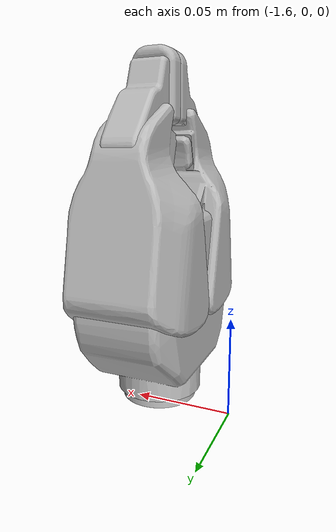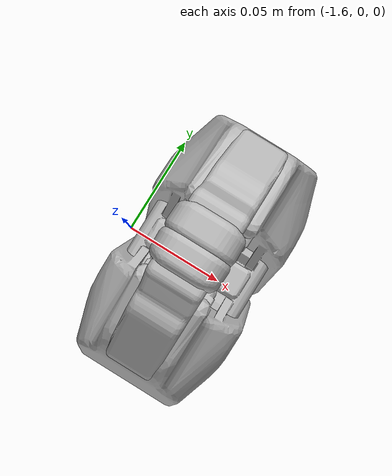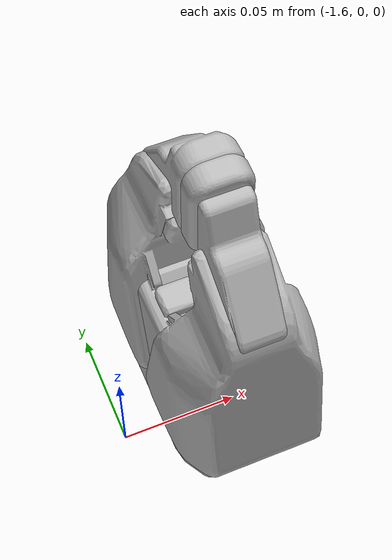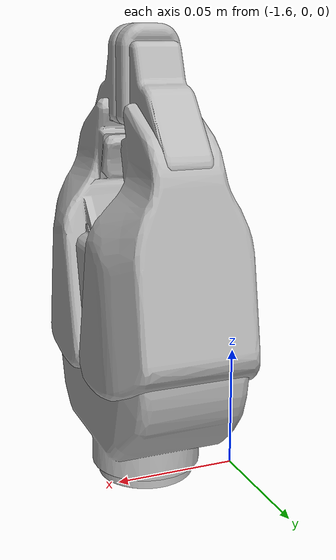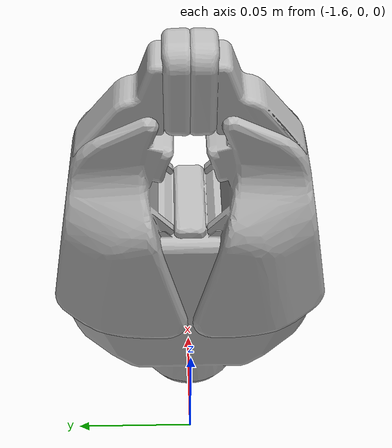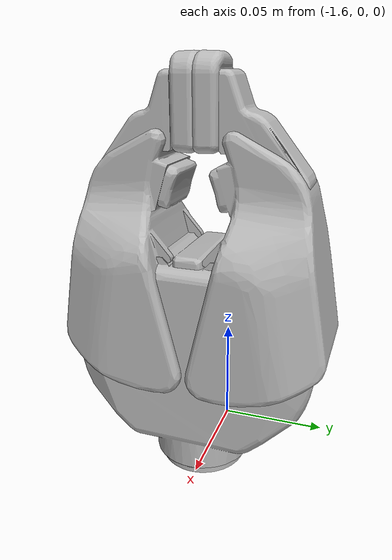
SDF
<?xml version="1.0" ?>
<sdf version='1.4'>
  <model name='pr2_gripper'>
    <pose>-0.771000 0.188000 -0.790675 3.141593 -1.570796 3.141593</pose>
    <link name='r_wrist_roll_link'>
      <pose>0.771000 -0.188000 0.790675 0.000000 -0.000000 0.000000</pose>
      <inertial>
        <pose>0.056408 0.000451 -0.001014 0.000000 -0.000000 0.000000</pose>
        <inertia>
          <ixx>0.011352</ixx>
          <ixy>-0.000016</ixy>
          <ixz>-0.000001</ixz>
          <iyy>0.011677</iyy>
          <iyz>-0.000001</iyz>
          <izz>0.011866</izz>
        </inertia>
        <mass>0.681070</mass>
      </inertial>
      <collision name='r_wrist_roll_link_geom'>
        <pose>0.000000 0.000000 0.000000 0.000000 -0.000000 0.000000</pose>
        <geometry>
          <mesh>
            <uri>model://pr2/meshes/forearm_v0/wrist_roll_L.stl</uri>
            <scale>1.000000 1.000000 1.000000</scale>
            <uri>__default__</uri>
          </mesh>
        </geometry>
        <surface>
          <friction>
            <ode>
              <mu>-1.000000</mu>
              <mu2>-1.000000</mu2>
              <fdir1>0.000000 0.000000 0.000000</fdir1>
              <slip1>0.000000</slip1>
              <slip2>0.000000</slip2>
            </ode>
          </friction>
          <bounce>
            <restitution_coefficient>0.000000</restitution_coefficient>
            <threshold>100000.000000</threshold>
          </bounce>
          <contact>
            <ode>
              <soft_cfm>0.000000</soft_cfm>
              <soft_erp>0.200000</soft_erp>
              <kp>1000000000000.000000</kp>
              <kd>1.000000</kd>
              <max_vel>0.000000</max_vel>
              <min_depth>0.001000</min_depth>
            </ode>
          </contact>
        </surface>
        <laser_retro>0.000000</laser_retro>
      </collision>
      <visual name='r_wrist_roll_link_geom_visual'>
        <pose>0.000000 0.000000 0.000000 0.000000 -0.000000 0.000000</pose>
        <geometry>
          <mesh>
            <uri>model://pr2/meshes/forearm_v0/wrist_roll.stl</uri>
            <scale>1.000000 1.000000 1.000000</scale>
            <uri>__default__</uri>
          </mesh>
        </geometry>
        <material>
          <script>
            <name>__default__</name>
          </script>
        </material>
        <cast_shadows>1</cast_shadows>
        <laser_retro>0.000000</laser_retro>
        <transparency>0.000000</transparency>
      </visual>
      <visual name='r_wrist_roll_link_geom_r_gripper_palm_link_visual'>
        <pose>0.000000 0.000000 0.000000 0.000000 -0.000000 0.000000</pose>
        <geometry>
          <mesh>
            <uri>model://pr2/meshes/gripper_v0/gripper_palm.dae</uri>
            <scale>1.000000 1.000000 1.000000</scale>
            <uri>__default__</uri>
          </mesh>
        </geometry>
        <cast_shadows>1</cast_shadows>
        <laser_retro>0.000000</laser_retro>
        <transparency>0.000000</transparency>
      </visual>
      <gravity>1</gravity>
      <self_collide>0</self_collide>
      <kinematic>0</kinematic>
      <velocity_decay/>
    </link>
    <link name='r_gripper_l_finger_link'>
      <pose>0.847910 -0.178000 0.790675 0.000000 -0.000000 0.000000</pose>
      <inertial>
        <pose>0.035980 0.017300 -0.001640 0.000000 -0.000000 0.000000</pose>
        <inertia>
          <ixx>0.000078</ixx>
          <ixy>0.000001</ixy>
          <ixz>-0.000010</ixz>
          <iyy>0.000197</iyy>
          <iyz>-0.000003</iyz>
          <izz>0.000181</izz>
        </inertia>
        <mass>0.171260</mass>
      </inertial>
      <collision name='r_gripper_l_finger_link_geom'>
        <pose>0.000000 0.000000 0.000000 0.000000 -0.000000 0.000000</pose>
        <geometry>
          <mesh>
            <uri>model://pr2/meshes/gripper_v0/l_finger.stl</uri>
            <scale>1.000000 1.000000 1.000000</scale>
            <uri>__default__</uri>
          </mesh>
        </geometry>
        <surface>
          <friction>
            <ode>
              <mu>500.000000</mu>
              <mu2>500.000000</mu2>
              <fdir1>0.000000 0.000000 0.000000</fdir1>
              <slip1>0.000000</slip1>
              <slip2>0.000000</slip2>
            </ode>
          </friction>
          <bounce>
            <restitution_coefficient>0.000000</restitution_coefficient>
            <threshold>100000.000000</threshold>
          </bounce>
          <contact>
            <ode>
              <soft_cfm>0.000000</soft_cfm>
              <soft_erp>0.200000</soft_erp>
              <kp>1000000.000000</kp>
              <kd>1.000000</kd>
              <max_vel>0.000000</max_vel>
              <min_depth>0.001000</min_depth>
            </ode>
          </contact>
        </surface>
        <laser_retro>0.000000</laser_retro>
      </collision>
      <visual name='r_gripper_l_finger_link_geom_visual'>
        <pose>0.000000 0.000000 0.000000 0.000000 -0.000000 0.000000</pose>
        <geometry>
          <mesh>
            <uri>model://pr2/meshes/gripper_v0/l_finger.dae</uri>
            <scale>1.000000 1.000000 1.000000</scale>
            <uri>__default__</uri>
          </mesh>
        </geometry>
        <cast_shadows>1</cast_shadows>
        <laser_retro>0.000000</laser_retro>
        <transparency>0.000000</transparency>
      </visual>
      <gravity>1</gravity>
      <self_collide>0</self_collide>
      <kinematic>0</kinematic>
      <velocity_decay/>
    </link>
    <link name='r_gripper_l_finger_tip_link'>
      <pose>0.939280 -0.173050 0.790675 0.000000 -0.000000 0.000000</pose>
      <inertial>
        <pose>0.004230 0.002840 0.000000 0.000000 -0.000000 0.000000</pose>
        <inertia>
          <ixx>0.000008</ixx>
          <ixy>0.000006</ixy>
          <ixz>0.000000</ixz>
          <iyy>0.000010</iyy>
          <iyz>0.000000</iyz>
          <izz>0.000015</izz>
        </inertia>
        <mass>0.044190</mass>
      </inertial>
      <collision name='r_gripper_l_finger_tip_link_geom'>
        <pose>0.000000 0.000000 0.000000 0.000000 -0.000000 0.000000</pose>
        <geometry>
          <mesh>
            <uri>model://pr2/meshes/gripper_v0/l_finger_tip.stl</uri>
            <scale>1.000000 1.000000 1.000000</scale>
            <uri>__default__</uri>
          </mesh>
        </geometry>
        <surface>
          <friction>
            <ode>
              <mu>500.000000</mu>
              <mu2>500.000000</mu2>
              <fdir1>0.000000 0.000000 0.000000</fdir1>
              <slip1>0.000000</slip1>
              <slip2>0.000000</slip2>
            </ode>
          </friction>
          <bounce>
            <restitution_coefficient>0.000000</restitution_coefficient>
            <threshold>100000.000000</threshold>
          </bounce>
          <contact>
            <ode>
              <soft_cfm>0.000000</soft_cfm>
              <soft_erp>0.200000</soft_erp>
              <kp>10000000.000000</kp>
              <kd>1.000000</kd>
              <max_vel>0.000000</max_vel>
              <min_depth>0.001000</min_depth>
            </ode>
          </contact>
        </surface>
        <laser_retro>0.000000</laser_retro>
      </collision>
      <visual name='r_gripper_l_finger_tip_link_geom_visual'>
        <pose>0.000000 0.000000 0.000000 0.000000 -0.000000 0.000000</pose>
        <geometry>
          <mesh>
            <uri>model://pr2/meshes/gripper_v0/l_finger_tip.dae</uri>
            <scale>1.000000 1.000000 1.000000</scale>
            <uri>__default__</uri>
          </mesh>
        </geometry>
        <cast_shadows>1</cast_shadows>
        <laser_retro>0.000000</laser_retro>
        <transparency>0.000000</transparency>
      </visual>
      <sensor name='r_gripper_l_finger_tip_contact_sensor' type='contact'>
        <pose>0.000000 0.000000 0.000000 0.000000 -0.000000 0.000000</pose>
        <contact>
          <collision>r_gripper_l_finger_tip_link_geom</collision>
          <topic>__default_topic__</topic>
        </contact>
        <always_on>0</always_on>
        <update_rate>100.000000</update_rate>
        <visualize>0</visualize>
      </sensor>
      <gravity>1</gravity>
      <self_collide>0</self_collide>
      <kinematic>0</kinematic>
      <velocity_decay/>
    </link>
    <link name='r_gripper_motor_slider_link'>
      <pose>0.939280 -0.188000 0.790675 0.000000 -0.000000 0.000000</pose>
      <inertial>
        <pose>0.000000 0.000000 0.000000 0.000000 -0.000000 0.000000</pose>
        <inertia>
          <ixx>0.001000</ixx>
          <ixy>0.000000</ixy>
          <ixz>0.000000</ixz>
          <iyy>0.001000</iyy>
          <iyz>0.000000</iyz>
          <izz>0.001000</izz>
        </inertia>
        <mass>0.010000</mass>
      </inertial>
      <gravity>1</gravity>
      <self_collide>0</self_collide>
      <kinematic>0</kinematic>
      <velocity_decay/>
    </link>
    <link name='r_gripper_motor_screw_link'>
      <pose>0.939280 -0.188000 0.790675 0.000000 -0.000000 0.000000</pose>
      <inertial>
        <pose>0.000000 0.000000 0.000000 0.000000 -0.000000 0.000000</pose>
        <inertia>
          <ixx>0.000100</ixx>
          <ixy>0.000000</ixy>
          <ixz>0.000000</ixz>
          <iyy>0.000100</iyy>
          <iyz>0.000000</iyz>
          <izz>0.000100</izz>
        </inertia>
        <mass>0.010000</mass>
      </inertial>
      <gravity>1</gravity>
      <self_collide>0</self_collide>
      <kinematic>0</kinematic>
      <velocity_decay/>
    </link>
    <link name='r_gripper_r_finger_link'>
      <pose>0.847910 -0.198000 0.790675 0.000000 -0.000000 0.000000</pose>
      <inertial>
        <pose>0.035760 -0.017360 -0.000950 0.000000 -0.000000 0.000000</pose>
        <inertia>
          <ixx>0.000077</ixx>
          <ixy>-0.000002</ixy>
          <ixz>-0.000008</ixz>
          <iyy>0.000198</iyy>
          <iyz>0.000002</iyz>
          <izz>0.000181</izz>
        </inertia>
        <mass>0.173890</mass>
      </inertial>
      <collision name='r_gripper_r_finger_link_geom'>
        <pose>0.000000 0.000000 0.000000 -3.141590 -0.000000 0.000000</pose>
        <geometry>
          <mesh>
            <uri>model://pr2/meshes/gripper_v0/l_finger.stl</uri>
            <scale>1.000000 1.000000 1.000000</scale>
            <uri>__default__</uri>
          </mesh>
        </geometry>
        <surface>
          <friction>
            <ode>
              <mu>500.000000</mu>
              <mu2>500.000000</mu2>
              <fdir1>0.000000 0.000000 0.000000</fdir1>
              <slip1>0.000000</slip1>
              <slip2>0.000000</slip2>
            </ode>
          </friction>
          <bounce>
            <restitution_coefficient>0.000000</restitution_coefficient>
            <threshold>100000.000000</threshold>
          </bounce>
          <contact>
            <ode>
              <soft_cfm>0.000000</soft_cfm>
              <soft_erp>0.200000</soft_erp>
              <kp>1000000.000000</kp>
              <kd>1.000000</kd>
              <max_vel>0.000000</max_vel>
              <min_depth>0.001000</min_depth>
            </ode>
          </contact>
        </surface>
        <laser_retro>0.000000</laser_retro>
      </collision>
      <visual name='r_gripper_r_finger_link_geom_visual'>
        <pose>0.000000 0.000000 0.000000 -3.141590 0.000000 0.000000</pose>
        <geometry>
          <mesh>
            <uri>model://pr2/meshes/gripper_v0/l_finger.dae</uri>
            <scale>1.000000 1.000000 1.000000</scale>
            <uri>__default__</uri>
          </mesh>
        </geometry>
        <cast_shadows>1</cast_shadows>
        <laser_retro>0.000000</laser_retro>
        <transparency>0.000000</transparency>
      </visual>
      <gravity>1</gravity>
      <self_collide>0</self_collide>
      <kinematic>0</kinematic>
      <velocity_decay/>
    </link>
    <link name='r_gripper_r_finger_tip_link'>
      <pose>0.939280 -0.202950 0.790675 0.000000 -0.000000 0.000000</pose>
      <inertial>
        <pose>0.004230 -0.002840 0.000000 0.000000 -0.000000 0.000000</pose>
        <inertia>
          <ixx>0.000008</ixx>
          <ixy>-0.000006</ixy>
          <ixz>0.000000</ixz>
          <iyy>0.000010</iyy>
          <iyz>0.000000</iyz>
          <izz>0.000015</izz>
        </inertia>
        <mass>0.044190</mass>
      </inertial>
      <collision name='r_gripper_r_finger_tip_link_geom'>
        <pose>0.000000 0.000000 0.000000 -3.141590 -0.000000 0.000000</pose>
        <geometry>
          <mesh>
            <uri>model://pr2/meshes/gripper_v0/l_finger_tip.stl</uri>
            <scale>1.000000 1.000000 1.000000</scale>
            <uri>__default__</uri>
          </mesh>
        </geometry>
        <surface>
          <friction>
            <ode>
              <mu>500.000000</mu>
              <mu2>500.000000</mu2>
              <fdir1>0.000000 0.000000 0.000000</fdir1>
              <slip1>0.000000</slip1>
              <slip2>0.000000</slip2>
            </ode>
          </friction>
          <bounce>
            <restitution_coefficient>0.000000</restitution_coefficient>
            <threshold>100000.000000</threshold>
          </bounce>
          <contact>
            <ode>
              <soft_cfm>0.000000</soft_cfm>
              <soft_erp>0.200000</soft_erp>
              <kp>10000000.000000</kp>
              <kd>1.000000</kd>
              <max_vel>0.000000</max_vel>
              <min_depth>0.001000</min_depth>
            </ode>
          </contact>
        </surface>
        <laser_retro>0.000000</laser_retro>
      </collision>
      <visual name='r_gripper_r_finger_tip_link_geom_visual'>
        <pose>0.000000 0.000000 0.000000 -3.141590 0.000000 0.000000</pose>
        <geometry>
          <mesh>
            <uri>model://pr2/meshes/gripper_v0/l_finger_tip.dae</uri>
            <scale>1.000000 1.000000 1.000000</scale>
            <uri>__default__</uri>
          </mesh>
        </geometry>
        <cast_shadows>1</cast_shadows>
        <laser_retro>0.000000</laser_retro>
        <transparency>0.000000</transparency>
      </visual>
      <sensor name='r_gripper_r_finger_tip_contact_sensor' type='contact'>
        <pose>0.000000 0.000000 0.000000 0.000000 -0.000000 0.000000</pose>
        <contact>
          <collision>r_gripper_r_finger_tip_link_geom</collision>
          <topic>__default_topic__</topic>
        </contact>
        <always_on>0</always_on>
        <update_rate>100.000000</update_rate>
        <visualize>0</visualize>
      </sensor>
      <gravity>1</gravity>
      <self_collide>0</self_collide>
      <kinematic>0</kinematic>
      <velocity_decay/>
    </link>
    <link name='torso_lift_motor_screw_link'>
      <pose>-0.150000 0.000000 0.751000 0.000000 -0.000000 0.000000</pose>
      <inertial>
        <pose>0.000000 0.000000 0.000000 0.000000 -0.000000 0.000000</pose>
        <inertia>
          <ixx>0.001000</ixx>
          <ixy>0.000000</ixy>
          <ixz>0.000000</ixz>
          <iyy>0.001000</iyy>
          <iyz>0.000000</iyz>
          <izz>0.001000</izz>
        </inertia>
        <mass>1.000000</mass>
      </inertial>
      <gravity>1</gravity>
      <self_collide>0</self_collide>
      <kinematic>0</kinematic>
      <velocity_decay/>
    </link>
    <link name='r_gripper_l_parallel_link'>
      <pose>0.829910 -0.157000 0.790675 0.000000 -0.000000 0.000000</pose>
      <inertial>
        <pose>0.035980 0.017300 -0.001640 0.000000 -0.000000 0.000000</pose>
        <inertia>
          <ixx>0.000078</ixx>
          <ixy>0.000001</ixy>
          <ixz>-0.000010</ixz>
          <iyy>0.000197</iyy>
          <iyz>-0.000003</iyz>
          <izz>0.000181</izz>
        </inertia>
        <mass>0.171260</mass>
      </inertial>
      <gravity>1</gravity>
      <self_collide>0</self_collide>
      <kinematic>0</kinematic>
      <velocity_decay/>
    </link>
    <link name='r_gripper_r_parallel_link'>
      <pose>0.829910 -0.219000 0.790675 0.000000 -0.000000 0.000000</pose>
      <inertial>
        <pose>0.035760 -0.017360 -0.000950 0.000000 -0.000000 0.000000</pose>
        <inertia>
          <ixx>0.000077</ixx>
          <ixy>-0.000002</ixy>
          <ixz>-0.000008</ixz>
          <iyy>0.000198</iyy>
          <iyz>0.000002</iyz>
          <izz>0.000181</izz>
        </inertia>
        <mass>0.173890</mass>
      </inertial>
      <gravity>1</gravity>
      <self_collide>0</self_collide>
      <kinematic>0</kinematic>
      <velocity_decay/>
    </link>
    <joint name='r_gripper_l_finger_joint' type='revolute'>
      <pose>0.000000 0.000000 0.000000 0.000000 -0.000000 0.000000</pose>
      <parent>r_wrist_roll_link</parent>
      <child>r_gripper_l_finger_link</child>
      <axis>
        <dynamics>
          <damping>0.020000</damping>
          <friction>0.000000</friction>
        </dynamics>
        <limit>
          <lower>0.000000</lower>
          <upper>0.548000</upper>
          <effort>0.000000</effort>
          <velocity>0.000000</velocity>
        </limit>
        <xyz>0.000000 0.000000 1.000000</xyz>
      </axis>
    </joint>
    <joint name='r_gripper_l_finger_tip_joint' type='revolute'>
      <pose>0.000000 0.000000 0.000000 0.000000 -0.000000 0.000000</pose>
      <parent>r_gripper_l_finger_link</parent>
      <child>r_gripper_l_finger_tip_link</child>
      <axis>
        <dynamics>
          <damping>0.001000</damping>
          <friction>0.000000</friction>
        </dynamics>
        <limit>
          <lower>0.000000</lower>
          <upper>0.548000</upper>
          <effort>0.000000</effort>
          <velocity>0.000000</velocity>
        </limit>
        <xyz>0.000000 0.000000 -1.000000</xyz>
      </axis>
    </joint>
    <joint name='r_gripper_motor_slider_joint' type='prismatic'>
      <pose>0.000000 0.000000 0.000000 0.000000 -0.000000 0.000000</pose>
      <parent>r_wrist_roll_link</parent>
      <child>r_gripper_motor_slider_link</child>
      <axis>
        <dynamics>
          <damping>0.000000</damping>
          <friction>0.000000</friction>
        </dynamics>
        <limit>
          <lower>-0.100000</lower>
          <upper>0.100000</upper>
          <effort>0.000000</effort>
          <velocity>0.000000</velocity>
        </limit>
        <xyz>1.000000 0.000000 0.000000</xyz>
      </axis>
    </joint>
    <joint name='r_gripper_motor_screw_joint' type='revolute'>
      <pose>0.000000 0.000000 0.000000 0.000000 -0.000000 0.000000</pose>
      <parent>r_gripper_motor_slider_link</parent>
      <child>r_gripper_motor_screw_link</child>
      <axis>
        <dynamics>
          <damping>0.000100</damping>
          <friction>0.000000</friction>
        </dynamics>
        <limit>
          <lower>-10000000000000000.000000</lower>
          <upper>10000000000000000.000000</upper>
          <effort>0.000000</effort>
          <velocity>0.000000</velocity>
        </limit>
        <xyz>0.000000 1.000000 0.000000</xyz>
      </axis>
    </joint>
    <joint name='r_gripper_r_finger_joint' type='revolute'>
      <pose>0.000000 0.000000 0.000000 0.000000 -0.000000 0.000000</pose>
      <parent>r_wrist_roll_link</parent>
      <child>r_gripper_r_finger_link</child>
      <axis>
        <dynamics>
          <damping>0.020000</damping>
          <friction>0.000000</friction>
        </dynamics>
        <limit>
          <lower>0.000000</lower>
          <upper>0.548000</upper>
          <effort>0.000000</effort>
          <velocity>0.000000</velocity>
        </limit>
        <xyz>0.000000 0.000000 -1.000000</xyz>
      </axis>
    </joint>
    <joint name='r_gripper_r_finger_tip_joint' type='revolute'>
      <pose>0.000000 0.000000 0.000000 0.000000 -0.000000 0.000000</pose>
      <parent>r_gripper_r_finger_link</parent>
      <child>r_gripper_r_finger_tip_link</child>
      <axis>
        <dynamics>
          <damping>0.001000</damping>
          <friction>0.000000</friction>
        </dynamics>
        <limit>
          <lower>0.000000</lower>
          <upper>0.548000</upper>
          <effort>0.000000</effort>
          <velocity>0.000000</velocity>
        </limit>
        <xyz>0.000000 0.000000 1.000000</xyz>
      </axis>
    </joint>
    <joint name='r_gripper_r_screw_screw_joint' type='screw'>
      <pose>0.000000 0.000000 0.000000 0.000000 -0.000000 0.000000</pose>
      <parent>r_gripper_r_finger_tip_link</parent>
      <child>r_gripper_motor_screw_link</child>
      <thread_pitch>-3141.600000</thread_pitch>
      <axis>
        <dynamics>
          <damping>0.000000</damping>
          <friction>0.000000</friction>
        </dynamics>
        <limit>
          <lower>-10000000000000000.000000</lower>
          <upper>10000000000000000.000000</upper>
          <effort>0.000000</effort>
          <velocity>0.000000</velocity>
        </limit>
        <xyz>0.000000 1.000000 0.000000</xyz>
      </axis>
    </joint>
    <joint name='r_gripper_l_screw_screw_joint' type='screw'>
      <pose>0.000000 0.000000 0.000000 0.000000 -0.000000 0.000000</pose>
      <parent>r_gripper_l_finger_tip_link</parent>
      <child>r_gripper_motor_screw_link</child>
      <thread_pitch>3141.600000</thread_pitch>
      <axis>
        <dynamics>
          <damping>0.000000</damping>
          <friction>0.000000</friction>
        </dynamics>
        <limit>
          <lower>-10000000000000000.000000</lower>
          <upper>10000000000000000.000000</upper>
          <effort>0.000000</effort>
          <velocity>0.000000</velocity>
        </limit>
        <xyz>0.000000 1.000000 0.000000</xyz>
      </axis>
    </joint>
    <joint name='r_gripper_r_parallel_root_joint' type='revolute'>
      <pose>0.058910 -0.031000 0.000000 0.000000 -0.000000 0.000000</pose>
      <parent>r_gripper_r_parallel_link</parent>
      <child>r_wrist_roll_link</child>
      <axis>
        <dynamics>
          <damping>0.200000</damping>
          <friction>0.000000</friction>
        </dynamics>
        <limit>
          <lower>-10000000000000000.000000</lower>
          <upper>10000000000000000.000000</upper>
          <effort>0.000000</effort>
          <velocity>0.000000</velocity>
        </limit>
        <xyz>0.000000 0.000000 -1.000000</xyz>
      </axis>
    </joint>
    <joint name='r_gripper_l_parallel_root_joint' type='revolute'>
      <pose>0.058910 0.031000 0.000000 0.000000 -0.000000 0.000000</pose>
      <parent>r_gripper_l_parallel_link</parent>
      <child>r_wrist_roll_link</child>
      <axis>
        <dynamics>
          <damping>0.200000</damping>
          <friction>0.000000</friction>
        </dynamics>
        <limit>
          <lower>-10000000000000000.000000</lower>
          <upper>10000000000000000.000000</upper>
          <effort>0.000000</effort>
          <velocity>0.000000</velocity>
        </limit>
        <xyz>0.000000 0.000000 1.000000</xyz>
      </axis>
    </joint>
    <joint name='r_gripper_r_parallel_tip_joint' type='revolute'>
      <pose>-0.018000 -0.021000 0.000000 0.000000 -0.000000 0.000000</pose>
      <parent>r_gripper_r_parallel_link</parent>
      <child>r_gripper_r_finger_tip_link</child>
      <axis>
        <dynamics>
          <damping>0.000000</damping>
          <friction>0.000000</friction>
        </dynamics>
        <limit>
          <lower>-10000000000000000.000000</lower>
          <upper>10000000000000000.000000</upper>
          <effort>0.000000</effort>
          <velocity>0.000000</velocity>
        </limit>
        <xyz>0.000000 0.000000 1.000000</xyz>
      </axis>
    </joint>
    <joint name='r_gripper_l_parallel_tip_joint' type='revolute'>
      <pose>-0.018000 0.021000 0.000000 0.000000 -0.000000 0.000000</pose>
      <parent>r_gripper_l_parallel_link</parent>
      <child>r_gripper_l_finger_tip_link</child>
      <axis>
        <dynamics>
          <damping>0.000000</damping>
          <friction>0.000000</friction>
        </dynamics>
        <limit>
          <lower>-10000000000000000.000000</lower>
          <upper>10000000000000000.000000</upper>
          <effort>0.000000</effort>
          <velocity>0.000000</velocity>
        </limit>
        <xyz>0.000000 0.000000 1.000000</xyz>
      </axis>
    </joint>
    <joint name='r_gripper_joint' type='prismatic'>
      <pose>0.000000 0.000000 0.000000 0.000000 -0.000000 0.000000</pose>
      <parent>r_gripper_r_finger_tip_link</parent>
      <child>r_gripper_l_finger_tip_link</child>
      <axis>
        <dynamics>
          <damping>0.000000</damping>
          <friction>0.000000</friction>
        </dynamics>
        <limit>
          <lower>-10000000000000000.000000</lower>
          <upper>10000000000000000.000000</upper>
          <effort>0.000000</effort>
          <velocity>0.000000</velocity>
        </limit>
        <xyz>0.000000 1.000000 0.000000</xyz>
      </axis>
    </joint>
    <static>0</static>
  </model>
</sdf>
